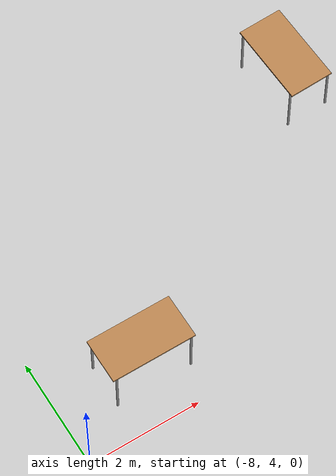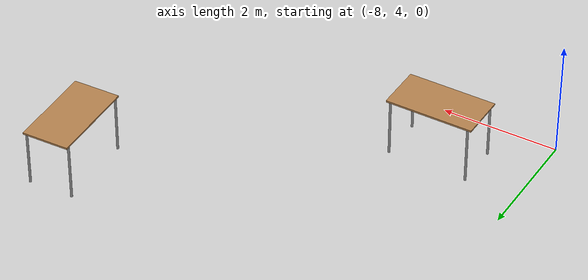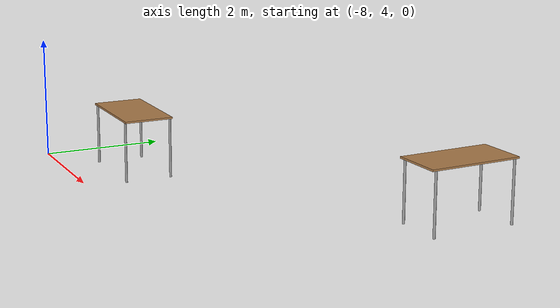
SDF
<sdf version="1.6">
 <world name="__default__">
  <model name="table_6">
   <static>1</static>
   <link name="link">
    <collision name="surface">
     <pose>0 0 1 0 -0 0</pose>
     <geometry><box><size>1.5 0.8 0.03</size></box></geometry>
     <surface><friction><ode><mu>0.6</mu><mu2>0.6</mu2></ode></friction></surface>
    </collision>
    <visual name="visual1">
     <pose>0 0 1 0 -0 0</pose>
     <geometry><box><size>1.5 0.8 0.03</size></box></geometry>
     <material>
      <script><uri>file://media/materials/scripts/gazebo.material</uri><name>Gazebo/Wood</name></script>
     </material>
    </visual>
    <collision name="front_left_leg">
     <pose>0.68 0.38 0.5 0 -0 0</pose>
     <geometry><cylinder><radius>0.02</radius><length>1</length></cylinder></geometry>
    </collision>
    <visual name="front_left_leg">
     <pose>0.68 0.38 0.5 0 -0 0</pose>
     <geometry><cylinder><radius>0.02</radius><length>1</length></cylinder></geometry>
     <material>
      <script><uri>file://media/materials/scripts/gazebo.material</uri><name>Gazebo/Grey</name></script>
     </material>
    </visual>
    <collision name="front_right_leg">
     <pose>0.68 -0.38 0.5 0 -0 0</pose>
     <geometry><cylinder><radius>0.02</radius><length>1</length></cylinder></geometry>
    </collision>
    <visual name="front_right_leg">
     <pose>0.68 -0.38 0.5 0 -0 0</pose>
     <geometry><cylinder><radius>0.02</radius><length>1</length></cylinder></geometry>
     <material>
      <script><uri>file://media/materials/scripts/gazebo.material</uri><name>Gazebo/Grey</name></script>
     </material>
    </visual>
    <collision name="back_right_leg">
     <pose>-0.68 -0.38 0.5 0 -0 0</pose>
     <geometry><cylinder><radius>0.02</radius><length>1</length></cylinder></geometry>
    </collision>
    <visual name="back_right_leg">
     <pose>-0.68 -0.38 0.5 0 -0 0</pose>
     <geometry><cylinder><radius>0.02</radius><length>1</length></cylinder></geometry>
     <material>
      <script><uri>file://media/materials/scripts/gazebo.material</uri><name>Gazebo/Grey</name></script>
     </material>
    </visual>
    <collision name="back_left_leg">
     <pose>-0.68 0.38 0.5 0 -0 0</pose>
     <geometry><cylinder><radius>0.02</radius><length>1</length></cylinder></geometry>
    </collision>
    <visual name="back_left_leg">
     <pose>-0.68 0.38 0.5 0 -0 0</pose>
     <geometry><cylinder><radius>0.02</radius><length>1</length></cylinder></geometry>
     <material>
      <script><uri>file://media/materials/scripts/gazebo.material</uri><name>Gazebo/Grey</name></script>
     </material>
    </visual>
   </link>
   <pose>-1.65161 8.22024 0 0 0 -1.53316</pose>
  </model>
  <model name="table_7">
   <static>1</static>
   <link name="link">
    <collision name="surface">
     <pose>0 0 1 0 -0 0</pose>
     <geometry><box><size>1.5 0.8 0.03</size></box></geometry>
     <surface><friction><ode><mu>0.6</mu><mu2>0.6</mu2></ode></friction></surface>
    </collision>
    <visual name="visual1">
     <pose>0 0 1 0 -0 0</pose>
     <geometry><box><size>1.5 0.8 0.03</size></box></geometry>
     <material>
      <script><uri>file://media/materials/scripts/gazebo.material</uri><name>Gazebo/Wood</name></script>
     </material>
    </visual>
    <collision name="front_left_leg">
     <pose>0.68 0.38 0.5 0 -0 0</pose>
     <geometry><cylinder><radius>0.02</radius><length>1</length></cylinder></geometry>
    </collision>
    <visual name="front_left_leg">
     <pose>0.68 0.38 0.5 0 -0 0</pose>
     <geometry><cylinder><radius>0.02</radius><length>1</length></cylinder></geometry>
     <material>
      <script><uri>file://media/materials/scripts/gazebo.material</uri><name>Gazebo/Grey</name></script>
     </material>
    </visual>
    <collision name="front_right_leg">
     <pose>0.68 -0.38 0.5 0 -0 0</pose>
     <geometry><cylinder><radius>0.02</radius><length>1</length></cylinder></geometry>
    </collision>
    <visual name="front_right_leg">
     <pose>0.68 -0.38 0.5 0 -0 0</pose>
     <geometry><cylinder><radius>0.02</radius><length>1</length></cylinder></geometry>
     <material>
      <script><uri>file://media/materials/scripts/gazebo.material</uri><name>Gazebo/Grey</name></script>
     </material>
    </visual>
    <collision name="back_right_leg">
     <pose>-0.68 -0.38 0.5 0 -0 0</pose>
     <geometry><cylinder><radius>0.02</radius><length>1</length></cylinder></geometry>
    </collision>
    <visual name="back_right_leg">
     <pose>-0.68 -0.38 0.5 0 -0 0</pose>
     <geometry><cylinder><radius>0.02</radius><length>1</length></cylinder></geometry>
     <material>
      <script><uri>file://media/materials/scripts/gazebo.material</uri><name>Gazebo/Grey</name></script>
     </material>
    </visual>
    <collision name="back_left_leg">
     <pose>-0.68 0.38 0.5 0 -0 0</pose>
     <geometry><cylinder><radius>0.02</radius><length>1</length></cylinder></geometry>
    </collision>
    <visual name="back_left_leg">
     <pose>-0.68 0.38 0.5 0 -0 0</pose>
     <geometry><cylinder><radius>0.02</radius><length>1</length></cylinder></geometry>
     <material>
      <script><uri>file://media/materials/scripts/gazebo.material</uri><name>Gazebo/Grey</name></script>
     </material>
    </visual>
   </link>
   <pose>-6.42688 5.01786 0 0 -0 0</pose>
  </model>
 </world>
</sdf>
